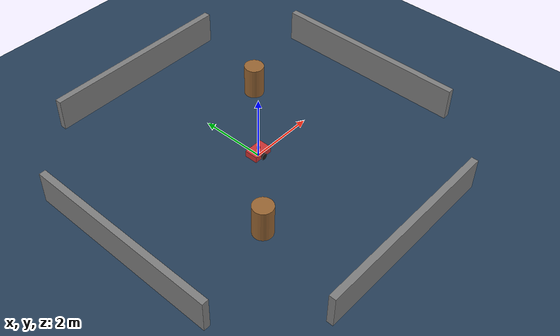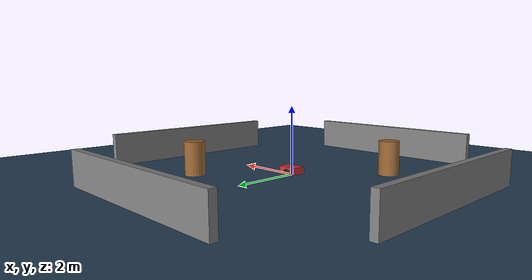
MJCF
<!-- MJCF Model for Differential Drive Robot with LiDAR and IMU -->
<!-- Customize this model for your specific robot -->

<mujoco model="differential_drive_robot">
  <compiler angle="radian" coordinate="local"/>

  <option timestep="0.001" gravity="0 0 -9.81" integrator="RK4"/>

  <default>
    <geom friction="1 0.5 0.5" condim="3"/>
    <joint damping="0.1"/>
    <motor ctrllimited="true" ctrlrange="-10 10"/>
  </default>

  <asset>
    <texture name="grid" type="2d" builtin="checker" width="512" height="512"
             rgb1="0.1 0.2 0.3" rgb2="0.2 0.3 0.4"/>
    <material name="grid_mat" texture="grid" texrepeat="10 10"/>
    <material name="robot_mat" rgba="0.8 0.2 0.2 1"/>
    <material name="wheel_mat" rgba="0.1 0.1 0.1 1"/>
    <material name="lidar_mat" rgba="0.2 0.2 0.8 1"/>
  </asset>

  <worldbody>
    <!-- Ground plane -->
    <geom name="ground" type="plane" size="50 50 0.1" material="grid_mat"/>

    <!-- Sample obstacles for LiDAR testing -->
    <body name="wall1" pos="5 0 0.5">
      <geom type="box" size="0.1 3 0.5" rgba="0.5 0.5 0.5 1"/>
    </body>
    <body name="wall2" pos="-5 0 0.5">
      <geom type="box" size="0.1 3 0.5" rgba="0.5 0.5 0.5 1"/>
    </body>
    <body name="wall3" pos="0 5 0.5">
      <geom type="box" size="3 0.1 0.5" rgba="0.5 0.5 0.5 1"/>
    </body>
    <body name="wall4" pos="0 -5 0.5">
      <geom type="box" size="3 0.1 0.5" rgba="0.5 0.5 0.5 1"/>
    </body>

    <!-- Cylindrical obstacles -->
    <body name="pillar1" pos="2 2 0.5">
      <geom type="cylinder" size="0.3 0.5" rgba="0.6 0.4 0.2 1"/>
    </body>
    <body name="pillar2" pos="-2 -2 0.5">
      <geom type="cylinder" size="0.3 0.5" rgba="0.6 0.4 0.2 1"/>
    </body>

    <!-- Robot base (chassis) -->
    <body name="robot_base" pos="0 0 0.15">
      <joint name="robot_x" type="slide" axis="1 0 0"/>
      <joint name="robot_y" type="slide" axis="0 1 0"/>
      <joint name="robot_yaw" type="hinge" axis="0 0 1"/>

      <!-- Main chassis body -->
      <geom name="chassis" type="box" size="0.3 0.2 0.1" material="robot_mat" mass="5"/>

      <!-- IMU is located at robot base center -->
      <!-- Accelerometer sensor -->
      <site name="imu_site" pos="0 0 0" size="0.02"/>

      <!-- Left wheel -->
      <body name="left_wheel" pos="0 0.22 -0.05">
        <joint name="left_wheel_joint" type="hinge" axis="0 1 0"/>
        <geom name="left_wheel_geom" type="cylinder" size="0.1 0.02"
              material="wheel_mat" mass="0.5" euler="1.5708 0 0"/>
      </body>

      <!-- Right wheel -->
      <body name="right_wheel" pos="0 -0.22 -0.05">
        <joint name="right_wheel_joint" type="hinge" axis="0 1 0"/>
        <geom name="right_wheel_geom" type="cylinder" size="0.1 0.02"
              material="wheel_mat" mass="0.5" euler="1.5708 0 0"/>
      </body>

      <!-- Caster wheel (front) -->
      <body name="caster" pos="0.2 0 -0.08">
        <geom name="caster_geom" type="sphere" size="0.02" mass="0.1"/>
      </body>

      <!-- LiDAR sensor mount -->
      <body name="lidar" pos="0 0 0.15">
        <geom name="lidar_body" type="cylinder" size="0.05 0.03"
              material="lidar_mat" mass="0.3"/>
        <!-- LiDAR scan origin -->
        <site name="lidar_site" pos="0 0 0.03" size="0.01"/>
      </body>
    </body>
  </worldbody>

  <!-- Actuators for differential drive -->
  <actuator>
    <velocity name="left_motor" joint="left_wheel_joint" kv="10"/>
    <velocity name="right_motor" joint="right_wheel_joint" kv="10"/>
  </actuator>

  <!-- Sensors -->
  <sensor>
    <!-- Accelerometer at IMU site -->
    <accelerometer name="imu_accel" site="imu_site"/>
    <!-- Gyroscope at IMU site -->
    <gyro name="imu_gyro" site="imu_site"/>
    <!-- Wheel encoders -->
    <jointvel name="left_wheel_vel" joint="left_wheel_joint"/>
    <jointvel name="right_wheel_vel" joint="right_wheel_joint"/>
  </sensor>
</mujoco>
